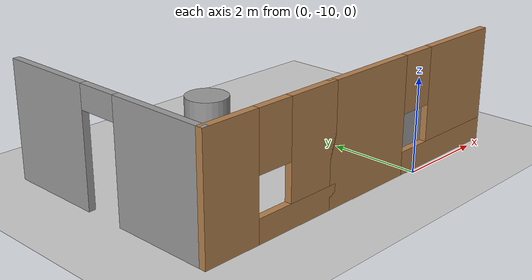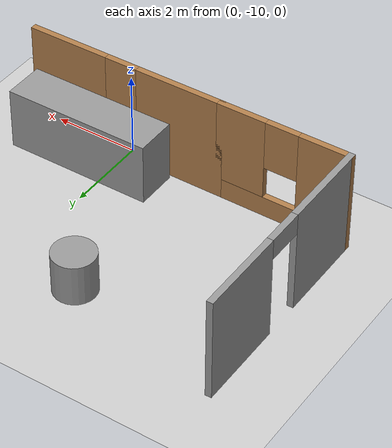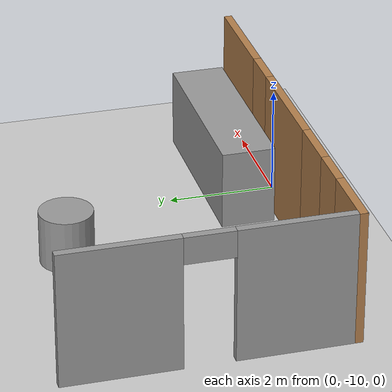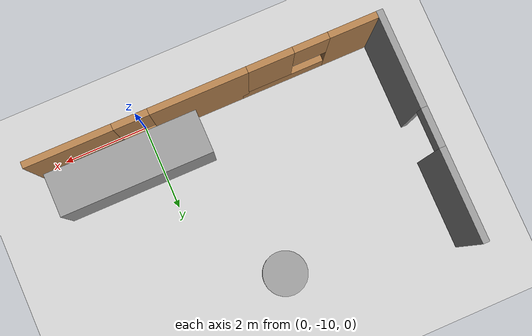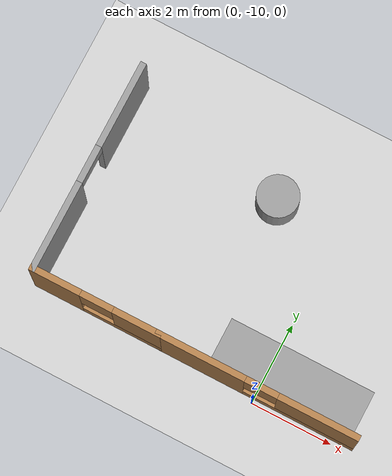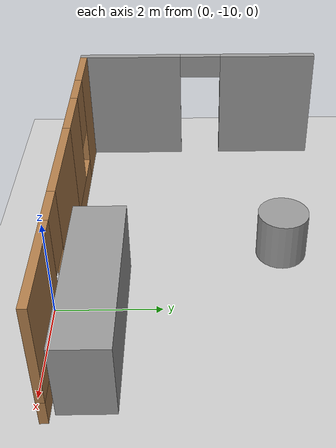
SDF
<sdf version="1.7">
 <world name="default">
  <model name="ground_plane">
   <static>1</static>
   <link name="link">
    <collision name="collision">
     <geometry><plane><normal>0 0 1</normal><size>100 100</size></plane></geometry>
     <surface><friction><ode><mu>100</mu><mu2>50</mu2></ode></friction></surface>
    </collision>
    <visual name="visual">
     <cast_shadows>0</cast_shadows>
     <geometry><plane><normal>0 0 1</normal><size>100 100</size></plane></geometry>
     <material>
      <script><uri>file://media/materials/scripts/gazebo.material</uri><name>Gazebo/Grey</name></script>
     </material>
    </visual>
   </link>
  </model>
  <model name="hospital_floor_v2">
   <link name="Wall_37">
    <pose>-5.525 -7.2744 0 0 -0 1.5708</pose>
    <visual name="Wall_37_Visual_0">
     <pose>-1.50888 0 1.25 0 -0 0</pose>
     <geometry><box><size>2.23223 0.15 2.5</size></box></geometry>
     <material>
      <script><uri>file://media/materials/scripts/gazebo.material</uri><name>Gazebo/Grey</name></script>
      <ambient>1 1 1 1</ambient>
     </material>
     <meta><layer>0</layer></meta>
    </visual>
    <collision name="Wall_37_Collision_0">
     <geometry><box><size>2.23223 0.15 2.5</size></box></geometry>
     <pose>-1.50888 0 1.25 0 -0 0</pose>
    </collision>
    <visual name="Wall_37_Visual_1">
     <pose>1.56612 0 1.25 0 -0 0</pose>
     <geometry><box><size>2.11777 0.15 2.5</size></box></geometry>
     <material>
      <script><uri>file://media/materials/scripts/gazebo.material</uri><name>Gazebo/Grey</name></script>
      <ambient>1 1 1 1</ambient>
     </material>
     <meta><layer>0</layer></meta>
    </visual>
    <collision name="Wall_37_Collision_1">
     <geometry><box><size>2.11777 0.15 2.5</size></box></geometry>
     <pose>1.56612 0 1.25 0 -0 0</pose>
    </collision>
    <visual name="Wall_37_Visual_2">
     <pose>0.057233 0 2.25 0 -0 0</pose>
     <geometry><box><size>0.9 0.15 0.5</size></box></geometry>
     <material>
      <script><uri>file://media/materials/scripts/gazebo.material</uri><name>Gazebo/Grey</name></script>
      <ambient>1 1 1 1</ambient>
     </material>
     <meta><layer>0</layer></meta>
    </visual>
    <collision name="Wall_37_Collision_2">
     <geometry><box><size>0.9 0.15 0.5</size></box></geometry>
     <pose>0.057233 0 2.25 0 -0 0</pose>
    </collision>
   </link>
   <link name="Wall_47">
    <pose>-3.975 -9.8244 0 0 -0 0</pose>
    <visual name="Wall_47_Visual_0">
     <pose>-0.996933 0 1.25 0 -0 0</pose>
     <geometry><box><size>1.25654 0.15 2.5</size></box></geometry>
     <material>
      <script><uri>file://media/materials/scripts/gazebo.material</uri><name>Gazebo/Wood</name></script>
      <ambient>1 1 1 1</ambient>
     </material>
     <meta><layer>0</layer></meta>
    </visual>
    <collision name="Wall_47_Collision_0">
     <geometry><box><size>1.25654 0.15 2.5</size></box></geometry>
     <pose>-0.996933 0 1.25 0 -0 0</pose>
    </collision>
    <visual name="Wall_47_Visual_1">
     <pose>0.628268 0 0.25 0 -0 0</pose>
     <geometry><box><size>1.99387 0.15 0.5</size></box></geometry>
     <material>
      <script><uri>file://media/materials/scripts/gazebo.material</uri><name>Gazebo/Wood</name></script>
      <ambient>1 1 1 1</ambient>
     </material>
     <meta><layer>0</layer></meta>
    </visual>
    <collision name="Wall_47_Collision_1">
     <geometry><box><size>1.99387 0.15 0.5</size></box></geometry>
     <pose>0.628268 0 0.25 0 -0 0</pose>
    </collision>
    <visual name="Wall_47_Visual_2">
     <pose>1.02827 0 1.5 0 -0 0</pose>
     <geometry><box><size>1.19387 0.15 2</size></box></geometry>
     <material>
      <script><uri>file://media/materials/scripts/gazebo.material</uri><name>Gazebo/Wood</name></script>
      <ambient>1 1 1 1</ambient>
     </material>
     <meta><layer>0</layer></meta>
    </visual>
    <collision name="Wall_47_Collision_2">
     <geometry><box><size>1.19387 0.15 2</size></box></geometry>
     <pose>1.02827 0 1.5 0 -0 0</pose>
    </collision>
    <visual name="Wall_47_Visual_3">
     <pose>0.031335 0 1.9 0 -0 0</pose>
     <geometry><box><size>0.8 0.15 1.2</size></box></geometry>
     <material>
      <script><uri>file://media/materials/scripts/gazebo.material</uri><name>Gazebo/Wood</name></script>
      <ambient>1 1 1 1</ambient>
     </material>
     <meta><layer>0</layer></meta>
    </visual>
    <collision name="Wall_47_Collision_3">
     <geometry><box><size>0.8 0.15 1.2</size></box></geometry>
     <pose>0.031335 0 1.9 0 -0 0</pose>
    </collision>
   </link>
   <link name="Wall_60">
    <pose>0 -9.8244 0 0 -0 0</pose>
    <visual name="Wall_60_Visual_0">
     <pose>-1.394 0 1.25 0 -0 0</pose>
     <geometry><box><size>2.212 0.15 2.5</size></box></geometry>
     <material>
      <script><uri>file://media/materials/scripts/gazebo.material</uri><name>Gazebo/Wood</name></script>
      <ambient>1 1 1 1</ambient>
     </material>
     <meta><layer>0</layer></meta>
    </visual>
    <collision name="Wall_60_Collision_0">
     <geometry><box><size>2.212 0.15 2.5</size></box></geometry>
     <pose>-1.394 0 1.25 0 -0 0</pose>
    </collision>
    <visual name="Wall_60_Visual_1">
     <pose>1.106 0 0.25 0 -0 0</pose>
     <geometry><box><size>2.788 0.15 0.5</size></box></geometry>
     <material>
      <script><uri>file://media/materials/scripts/gazebo.material</uri><name>Gazebo/Wood</name></script>
      <ambient>1 1 1 1</ambient>
     </material>
     <meta><layer>0</layer></meta>
    </visual>
    <collision name="Wall_60_Collision_1">
     <geometry><box><size>2.788 0.15 0.5</size></box></geometry>
     <pose>1.106 0 0.25 0 -0 0</pose>
    </collision>
    <visual name="Wall_60_Visual_2">
     <pose>1.506 0 1.5 0 -0 0</pose>
     <geometry><box><size>1.988 0.15 2</size></box></geometry>
     <material>
      <script><uri>file://media/materials/scripts/gazebo.material</uri><name>Gazebo/Wood</name></script>
      <ambient>1 1 1 1</ambient>
     </material>
     <meta><layer>0</layer></meta>
    </visual>
    <collision name="Wall_60_Collision_2">
     <geometry><box><size>1.988 0.15 2</size></box></geometry>
     <pose>1.506 0 1.5 0 -0 0</pose>
    </collision>
    <visual name="Wall_60_Visual_3">
     <pose>0.112002 0 1.9 0 -0 0</pose>
     <geometry><box><size>0.8 0.15 1.2</size></box></geometry>
     <material>
      <script><uri>file://media/materials/scripts/gazebo.material</uri><name>Gazebo/Wood</name></script>
      <ambient>1 1 1 1</ambient>
     </material>
     <meta><layer>0</layer></meta>
    </visual>
    <collision name="Wall_60_Collision_3">
     <geometry><box><size>0.8 0.15 1.2</size></box></geometry>
     <pose>0.112002 0 1.9 0 -0 0</pose>
    </collision>
   </link>
   <static>1</static>
  </model>
  <model name="unit_box_2_clone_clone">
   <pose>0.560699 -9.16775 0.747084 -0 -0.00015 -2.8e-05</pose>
   <link name="link">
    <inertial>
     <mass>1</mass>
     <inertia>
      <ixx>0.166667</ixx>
      <ixy>0</ixy>
      <ixz>0</ixz>
      <iyy>0.166667</iyy>
      <iyz>0</iyz>
      <izz>0.166667</izz>
     </inertia>
    </inertial>
    <collision name="collision"><geometry><box><size>3.55191 1 1.4947</size></box></geometry></collision>
    <visual name="visual">
     <geometry><box><size>3.55191 1 1.4947</size></box></geometry>
     <material>
      <script><name>Gazebo/Grey</name><uri>file://media/materials/scripts/gazebo.material</uri></script>
     </material>
    </visual>
   </link>
  </model>
  <model name="unit_cylinder_2_clone">
   <pose>-1.60422 -5.66694 0.499992 -3e-06 2e-06 0</pose>
   <link name="link">
    <inertial>
     <mass>1</mass>
     <inertia><ixx>0.145833</ixx><ixy>0</ixy><ixz>0</ixz><iyy>0.145833</iyy><iyz>0</iyz><izz>0.125</izz></inertia>
    </inertial>
    <collision name="collision">
     <geometry><cylinder><radius>0.5</radius><length>1</length></cylinder></geometry>
    </collision>
    <visual name="visual">
     <geometry><cylinder><radius>0.5</radius><length>1</length></cylinder></geometry>
     <material>
      <script><name>Gazebo/Grey</name><uri>file://media/materials/scripts/gazebo.material</uri></script>
     </material>
    </visual>
   </link>
  </model>
 </world>
</sdf>
